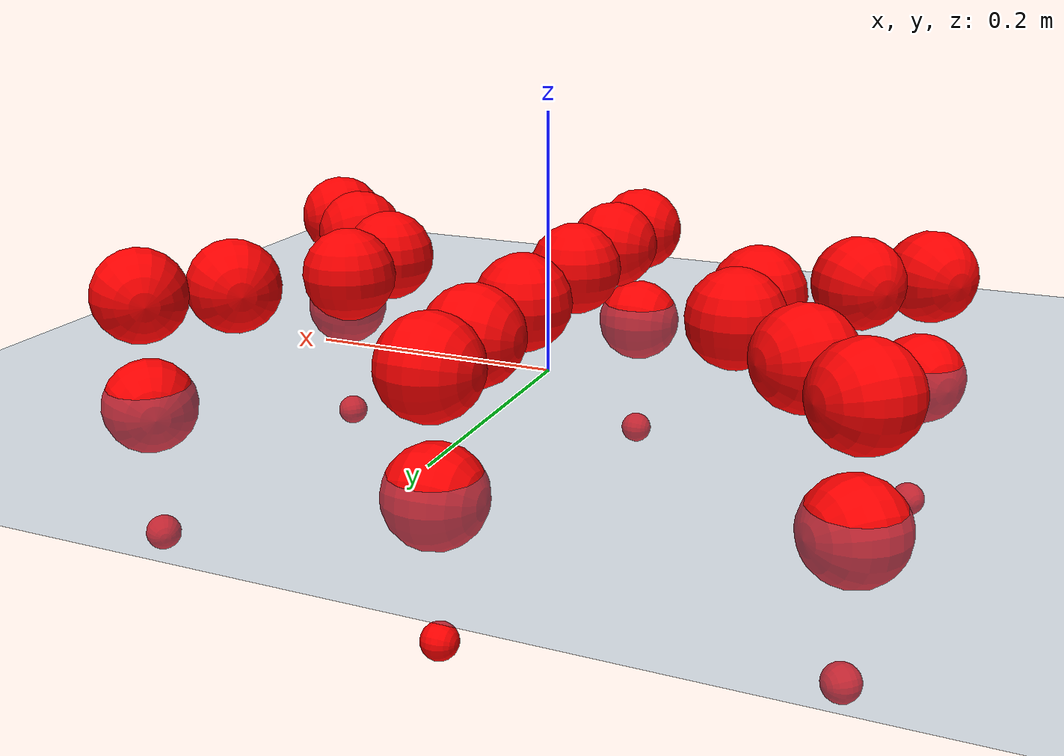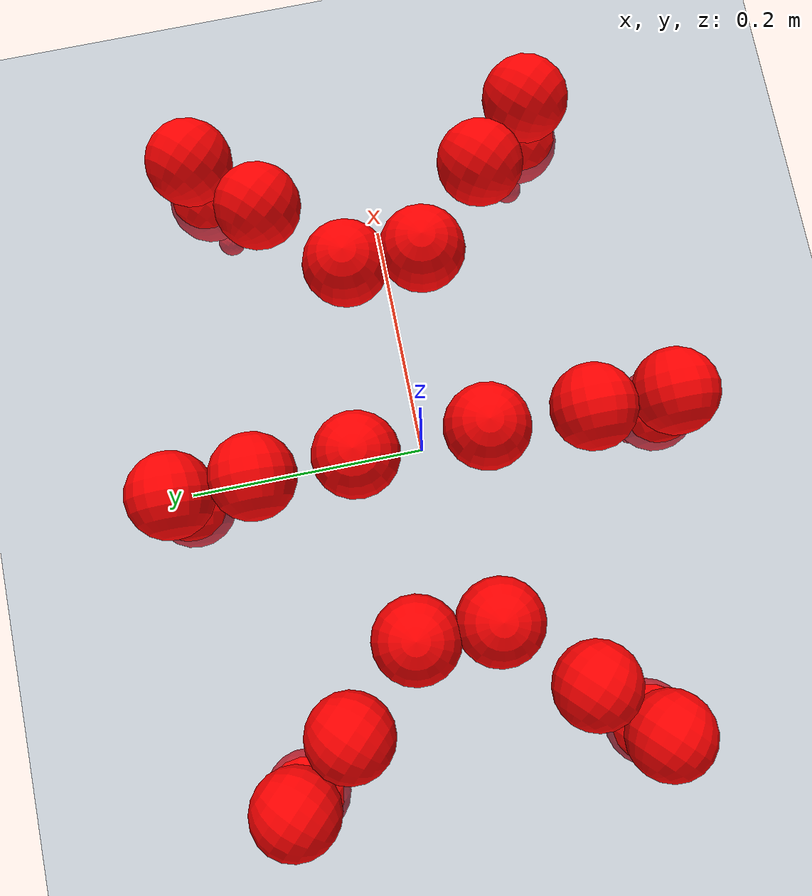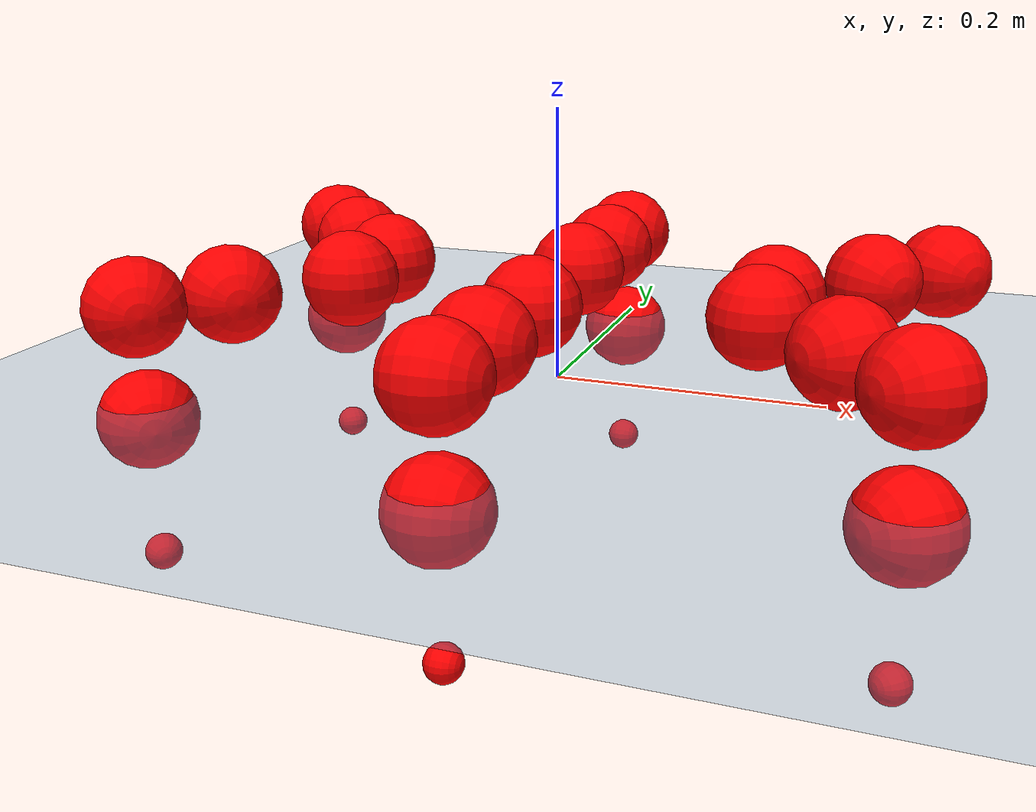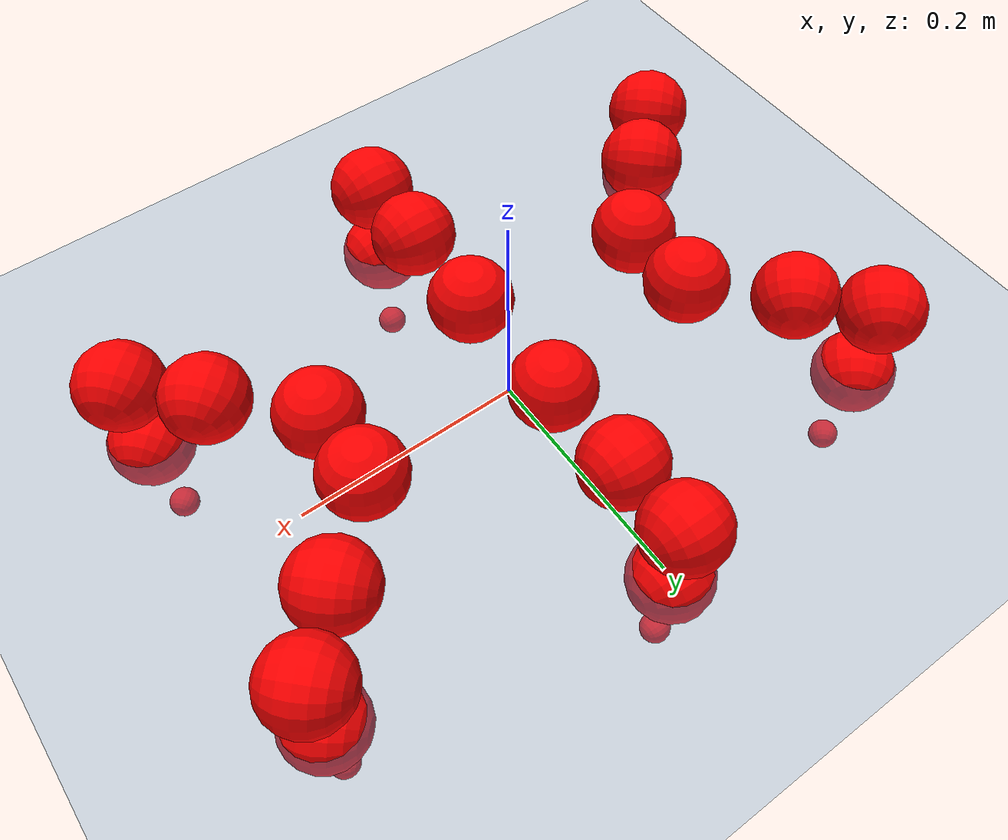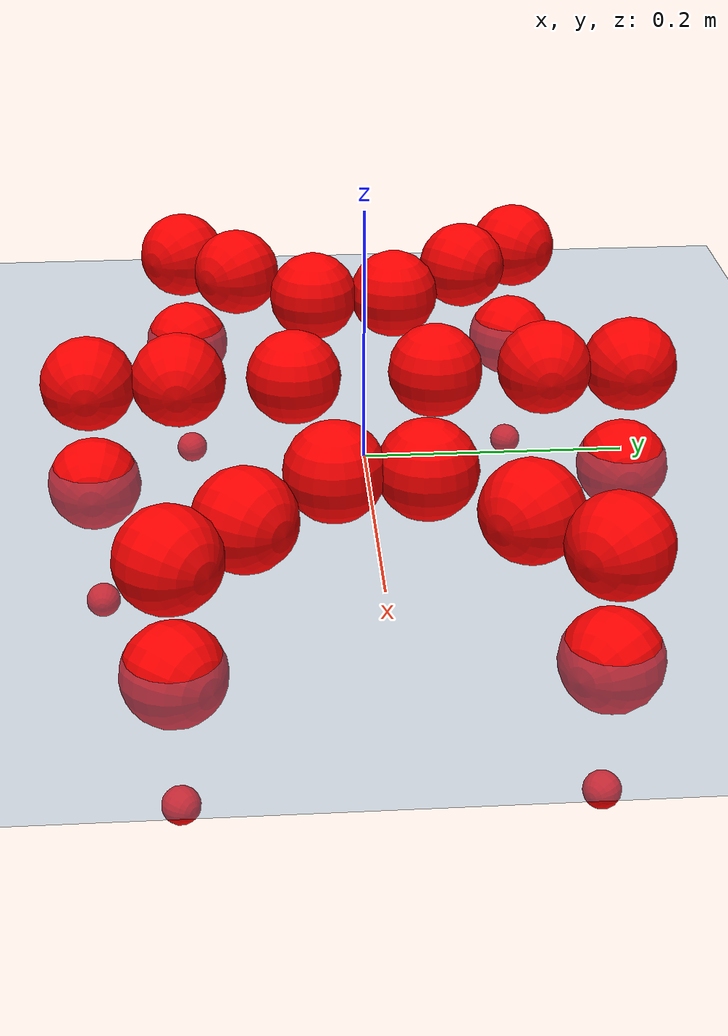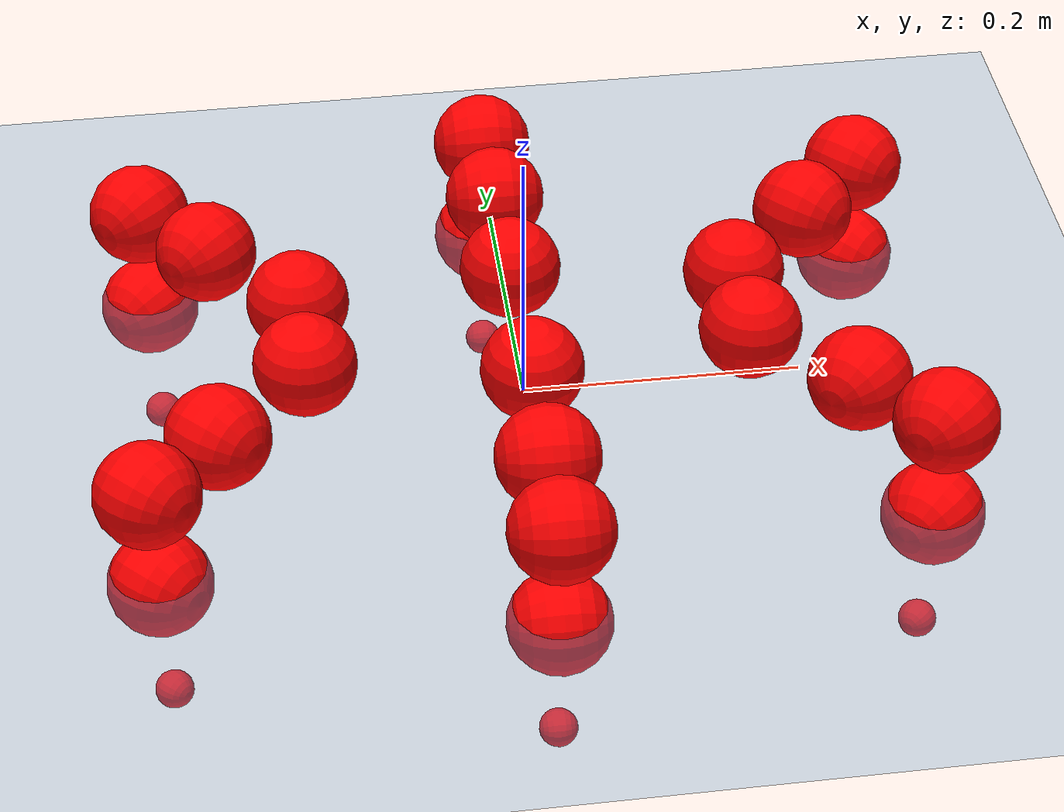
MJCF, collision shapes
<mujoco model="Golem">
  <compiler angle="radian" assetdir="assets" balanceinertia="true" inertiafromgeom="false"/>

  <option timestep="0.005" density="1.2" viscosity="2e-05"/>

  <size nkey="1"/>

  <visual>
    <quality shadowsize="8192"/>
    <map shadowclip="0.5"/>
  </visual>

  <default>
    <default class="/">
      <joint armature="0.01" damping="0.01" frictionloss="0.01"/>
      <geom contype="0" conaffinity="0" group="1" solref="-1000 -80"/>
      <site size="0.01 0.005 0.005" group="5"/>
      <general forcelimited="true" biastype="affine" gainprm="25" biasprm="0 -25 -0.5"/>
      <default class="visual">
        <geom type="mesh" group="2"/>
      </default>
      <default class="collision">
        <geom group="3"/>
      </default>
      <default class="foot">
        <geom size="0.01 0 0" condim="6" group="4" priority="1" solimp="0.015 1 0.01"/>
      </default>
      <default class="reward_collision_sphere">
        <geom group="5" rgba="1 0 0 1"/>
      </default>
    </default>
  </default>

  <asset>
    <texture type="skybox" colorspace="auto" name="//unnamed_texture_0" builtin="gradient" rgb1="0.95 0.95 0.95" rgb2="0.95 0.95 0.95" width="100" height="600"/>
    <texture type="2d" colorspace="auto" name="texplane" builtin="checker" rgb1="0.345 0.575 0.748" rgb2="0.345 0.575 0.748" markrgb="1 1 1" width="512" height="512"/>
    <material name="MatPlane" class="/" texture="texplane" texuniform="true" texrepeat="2 2" specular="0.9"/>
    <mesh name="body" class="/" file="body.stl" scale="0.001 0.001 0.001"/>
    <mesh name="coxa" class="/" file="coxa.stl" scale="0.001 0.001 0.001"/>
    <mesh name="femur" class="/" file="femur.stl" scale="0.001 0.001 0.001"/>
    <mesh name="tibia" class="/" file="tibia.stl" scale="0.001 0.001 0.001"/>
    <mesh name="tarsus" class="/" file="tarsus.stl" scale="0.001 0.001 0.001"/>
  </asset>

  <worldbody>
    <geom name="floor" class="/" size="100 100 0.125" type="plane" group="0" material="MatPlane"/>
    <light name="toplight_shadow" class="/" pos="0 0 5" dir="0.0990148 0.0990148 -0.990148" type="directional" ambient="0.04 0.04 0.04" diffuse="0.55 0.55 0.55" specular="0.12 0.12 0.12"/>
    <light name="toplight_fill" class="/" pos="0 0 5" dir="0.0990148 0.0990148 -0.990148" type="directional" castshadow="false" ambient="0.04 0.04 0.04" diffuse="0.3 0.3 0.3" specular="0.08 0.08 0.08"/>
    <body name="trunk" pos="-0.000499737 0.000506715 -0.000224295" quat="1 7.15524e-05 4.10657e-05 -6.87674e-05">
      <inertial pos="-0.000264854 -0.000590261 -0.00237918" quat="0.999989 0.00409675 0.000765605 -0.00206619" mass="2.73265" diaginertia="0.00960501 0.00105558 0.014836"/>
      <joint name="//unnamed_joint_0" type="free"/>
      <geom name="//unnamed_geom_1" class="/" pos="0 0 0.0691636" quat="1 0 0 0" type="mesh" rgba="0.9 0.9 0.9 1" mesh="body"/>
      <site name="imu" class="/" pos="0.12819 0.00240731 0.104866" size="0.00901091"/>
      <camera name="track" class="/" pos="0 -1.27034 0" quat="0.707107 0.707107 0 0" mode="trackcom"/>
      <camera name="ego_camera" class="/" pos="0.128365 0 0.108068" quat="-0.5 -0.5 0.5 0.5"/>
      <body name="coxa_RR" pos="-0.174704 -0.053382 0.0710457" quat="0.382674 -5.30311e-05 1.79391e-05 -0.923883">
        <inertial pos="0.000305907 0.000956864 0.00166386" quat="0.999999 0.000446214 0.000415405 -0.00088063" mass="0.147605" diaginertia="0.00948867 0.00105776 0.0147783"/>
        <joint name="coxa_joint_RR" class="/" pos="0 0 0" axis="0.00330118 0.0019619 -0.999993" range="-3.12272 3.14109" armature="0.00924959" damping="0" frictionloss="0.00901151"/>
        <geom name="//unnamed_geom_2" class="/" type="mesh" rgba="0.2 0.2 0.2 1" mesh="coxa"/>
        <geom name="//unnamed_geom_3" class="reward_collision_sphere" size="0.0360436" pos="-0.0296226 0 0"/>
        <body name="femur_RR" pos="0.0589368 0.000961937 -0.00157434" quat="0.500034 -0.499574 0.500029 0.500363">
          <inertial pos="0.00023167 5.74159e-05 0.000976849" quat="0.999999 0.000915975 -0.000444978 7.9012e-05" mass="0.145185" diaginertia="0.00945235 0.00103114 0.0145426"/>
          <joint name="femur_joint_RR" class="/" pos="0 0 0" axis="0.00255855 0.00139188 -0.999996" range="-3.13843 3.13273" armature="0.00899678" damping="0.000226015" frictionloss="0.0086538"/>
          <geom name="//unnamed_geom_4" class="/" type="mesh" rgba="0.9 0.9 0.9 1" mesh="femur"/>
          <geom name="//unnamed_geom_5" class="reward_collision_sphere" size="0.0360436"/>
          <body name="tibia_RR" pos="0.00162158 -0.0672158 -0.000264205" quat="-2.77894e-05 1 3.95995e-05 -0.000141164">
            <inertial pos="0.000211572 -0.000662511 -0.000252001" quat="0.999989 -0.000831029 -0.00455638 -0.000331851" mass="0.146257" diaginertia="0.00942885 0.00103461 0.0148555"/>
            <joint name="tibia_joint_RR" class="/" pos="0 0 0" axis="-0.00316811 -0.000363904 0.999995" range="-3.15483 3.13441" armature="0.0089884" damping="0" frictionloss="0.00925627"/>
            <geom name="//unnamed_geom_6" class="/" type="mesh" rgba="0.2 0.2 0.2 1" mesh="tibia"/>
            <geom name="//unnamed_geom_7" class="reward_collision_sphere" size="0.0360436"/>
            <body name="tarsus_RR" pos="0.083768 -0.00097346 -0.000111787" quat="1 0.000256642 -0.000362357 0.000225488">
              <inertial pos="0.0589924 0.000251222 0.000675414" quat="0.501181 0.499403 0.498755 0.500657" mass="0.145501" diaginertia="0.00933979 0.00102312 0.0146436"/>
              <joint name="tarsus_joint_RR" class="/" pos="0 0 0" axis="0.00148816 0.000100406 0.999999" range="-3.12369 3.12826" armature="0.0090393" damping="0.00882148" frictionloss="0.00887176"/>
              <geom name="//unnamed_geom_8" class="/" type="mesh" rgba="0.9 0.9 0.9 1" mesh="tarsus"/>
              <geom name="foot_1" class="foot" size="0.00853154" pos="0.110591 0 0" quat="0 -0.707107 0 0.707107"/>
              <geom name="//unnamed_geom_10" class="reward_collision_sphere" size="0.0360436"/>
              <geom name="//unnamed_geom_11" class="reward_collision_sphere" size="0.0135164" pos="0.106148 0 0"/>
              <site name="foot_1" class="foot" pos="0.110591 0 0" quat="0 -0.707107 0 0.707107" size="0.00901091"/>
            </body>
          </body>
        </body>
      </body>
      <body name="coxa_RM" pos="-0.000282194 -0.0838649 0.0693655" quat="0.706872 0.000248357 -0.000455935 -0.707341">
        <inertial pos="-0.000438013 0.000107739 0.000235571" quat="1 -5.52918e-05 -2.67838e-05 6.87613e-05" mass="0.146065" diaginertia="0.0093659 0.00103081 0.0147557"/>
        <joint name="coxa_joint_RM" class="/" pos="0 0 0" axis="-0.00188583 -0.000293487 -0.999998" range="-3.14101 3.13536" armature="0.00875582" damping="0.0068554" frictionloss="0.00879149"/>
        <geom name="//unnamed_geom_12" class="/" type="mesh" rgba="0.2 0.2 0.2 1" mesh="coxa"/>
        <geom name="//unnamed_geom_13" class="reward_collision_sphere" size="0.0360436" pos="-0.0296226 0 0"/>
        <body name="femur_RM" pos="0.0575544 -0.00103612 -0.000275079" quat="0.49973 -0.500168 0.500241 0.499861">
          <inertial pos="0.000822893 0.000704437 0.000213639" quat="0.999998 -0.00146151 -0.000632184 0.000714395" mass="0.145309" diaginertia="0.00928353 0.00102573 0.0144986"/>
          <joint name="femur_joint_RM" class="/" pos="0 0 0" axis="-0.00310908 -0.00212905 -0.999993" range="-3.13843 3.12806" armature="0.00903742" damping="0.00349598" frictionloss="0.00943058"/>
          <geom name="//unnamed_geom_14" class="/" type="mesh" rgba="0.9 0.9 0.9 1" mesh="femur"/>
          <geom name="//unnamed_geom_15" class="reward_collision_sphere" size="0.0360436"/>
          <body name="tibia_RM" pos="0.00122777 -0.0677124 -0.000297569" quat="-0.000293607 1 -0.000251575 0.000201784">
            <inertial pos="0.00102677 0.000491452 -5.67247e-05" quat="0.99999 -0.00427217 0.000586842 0.00134156" mass="0.148894" diaginertia="0.00949678 0.00104835 0.0149648"/>
            <joint name="tibia_joint_RM" class="/" pos="0 0 0" axis="0.00100169 -0.000520751 0.999999" range="-3.14571 3.12156" armature="0.00906283" damping="0.00963889" frictionloss="0.00899359"/>
            <geom name="//unnamed_geom_16" class="/" type="mesh" rgba="0.2 0.2 0.2 1" mesh="tibia"/>
            <geom name="//unnamed_geom_17" class="reward_collision_sphere" size="0.0360436"/>
            <body name="tarsus_RM" pos="0.0854096 0.00056293 0.000481099" quat="1 9.07746e-06 4.9379e-07 -1.26299e-05">
              <inertial pos="0.0594043 0.000629051 5.38172e-05" quat="0.499186 0.500947 0.500585 0.499279" mass="0.148997" diaginertia="0.00938687 0.00104255 0.0150195"/>
              <joint name="tarsus_joint_RM" class="/" pos="0 0 0" axis="3.37344e-06 -3.90971e-06 1" range="-3.13142 3.14058" armature="0.00893356" damping="0.00681791" frictionloss="0.00918818"/>
              <geom name="//unnamed_geom_18" class="/" type="mesh" rgba="0.9 0.9 0.9 1" mesh="tarsus"/>
              <geom name="foot_2" class="foot" size="0.00877275" pos="0.110591 0 0" quat="0 -0.707107 0 0.707107"/>
              <geom name="//unnamed_geom_20" class="reward_collision_sphere" size="0.0360436"/>
              <geom name="//unnamed_geom_21" class="reward_collision_sphere" size="0.0135164" pos="0.106148 0 0"/>
              <site name="foot_2" class="foot" pos="0.110591 0 0" quat="0 -0.707107 0 0.707107" size="0.00901091"/>
            </body>
          </body>
        </body>
      </body>
      <body name="coxa_RF" pos="0.176075 -0.0526737 0.0700898" quat="0.923878 0.000112809 -0.000171572 -0.382687">
        <inertial pos="-0.000104428 -0.00069966 -0.000179349" quat="0.999996 0.000700204 0.00247034 -0.00077513" mass="0.147884" diaginertia="0.00952766 0.0010411 0.0148694"/>
        <joint name="coxa_joint_RF" class="/" pos="0 0 0" axis="0.00395351 0.0015942 -0.999991" range="-3.12351 3.12052" armature="0.00904027" damping="0.000855528" frictionloss="0.00909822"/>
        <geom name="//unnamed_geom_22" class="/" type="mesh" rgba="0.2 0.2 0.2 1" mesh="coxa"/>
        <geom name="//unnamed_geom_23" class="reward_collision_sphere" size="0.0360436" pos="-0.0296226 0 0"/>
        <body name="femur_RF" pos="0.0590117 0.00117605 0.000256414" quat="0.499984 -0.500008 0.500079 0.49993">
          <inertial pos="0.000709564 0.000428725 -0.000231604" quat="1 -0.000145266 1.45047e-05 -2.63159e-05" mass="0.147235" diaginertia="0.00960452 0.00104861 0.0149558"/>
          <joint name="femur_joint_RF" class="/" pos="0 0 0" axis="-0.000440625 -0.000511151 -1" range="-3.13718 3.15588" armature="0.00891387" damping="0.00987428" frictionloss="0.00940775"/>
          <geom name="//unnamed_geom_24" class="/" type="mesh" rgba="0.9 0.9 0.9 1" mesh="femur"/>
          <geom name="//unnamed_geom_25" class="reward_collision_sphere" size="0.0360436"/>
          <body name="tibia_RF" pos="-0.00020207 -0.0682156 -0.000605693" quat="7.53739e-06 1 -9.71238e-08 -5.50187e-06">
            <inertial pos="0.00010396 0.000256307 -0.00113505" quat="1 0.000527431 -5.65087e-05 0.000448061" mass="0.14663" diaginertia="0.00937204 0.00102919 0.0147063"/>
            <joint name="tibia_joint_RF" class="/" pos="0 0 0" axis="0.00165809 0.000595898 0.999998" range="-3.13418 3.11956" armature="0.00900819" damping="0.0094789" frictionloss="0.00859233"/>
            <geom name="//unnamed_geom_26" class="/" type="mesh" rgba="0.2 0.2 0.2 1" mesh="tibia"/>
            <geom name="//unnamed_geom_27" class="reward_collision_sphere" size="0.0360436"/>
            <body name="tarsus_RF" pos="0.0864001 0.000166626 0.000483021" quat="1 0.000171074 -0.000120586 -1.72654e-06">
              <inertial pos="0.0595721 0.000494225 2.9408e-05" quat="0.499827 0.500869 0.500145 0.499157" mass="0.144419" diaginertia="0.00929127 0.00101737 0.0143902"/>
              <joint name="tarsus_joint_RF" class="/" pos="0 0 0" axis="0.00420707 -0.00105639 0.999991" stiffness="0.0237171" range="-3.1466 3.1381" armature="0.00918996" damping="0" frictionloss="0.00923671"/>
              <geom name="//unnamed_geom_28" class="/" type="mesh" rgba="0.9 0.9 0.9 1" mesh="tarsus"/>
              <geom name="foot_3" class="foot" size="0.00878222" pos="0.110591 0 0" quat="0 -0.707107 0 0.707107"/>
              <geom name="//unnamed_geom_30" class="reward_collision_sphere" size="0.0360436"/>
              <geom name="//unnamed_geom_31" class="reward_collision_sphere" size="0.0135164" pos="0.106148 0 0"/>
              <site name="foot_3" class="foot" pos="0.110591 0 0" quat="0 -0.707107 0 0.707107" size="0.00901091"/>
            </body>
          </body>
        </body>
      </body>
      <body name="coxa_LR" pos="-0.175479 0.0554253 0.0711876" quat="0.382748 8.0505e-05 2.11463e-05 0.923853">
        <inertial pos="0.000744032 -4.47083e-05 0.00203164" quat="0.999998 -0.00183842 -3.83793e-05 0.00118816" mass="0.148307" diaginertia="0.00960144 0.00104851 0.014622"/>
        <joint name="coxa_joint_LR" class="/" pos="0 0 0" axis="-6.23717e-08 -1.3158e-05 -1" range="-3.12059 3.12155" armature="0.00870177" damping="0.00792581" frictionloss="0.00889188"/>
        <geom name="//unnamed_geom_32" class="/" type="mesh" rgba="0.2 0.2 0.2 1" mesh="coxa"/>
        <geom name="//unnamed_geom_33" class="reward_collision_sphere" size="0.0360436" pos="-0.0296226 0 0"/>
        <body name="femur_LR" pos="0.0594317 -0.00177106 -0.000685381" quat="0.50012 -0.499808 0.500079 0.499993">
          <inertial pos="1.54371e-05 -0.00161351 0.00039339" quat="1 -5.78676e-05 3.1311e-05 5.9951e-05" mass="0.146185" diaginertia="0.00927328 0.00102331 0.0145198"/>
          <joint name="femur_joint_LR" class="/" pos="0 0 0" axis="-0.00161078 0.000982836 0.999998" range="-3.13297 3.14335" armature="0.00889057" damping="0" frictionloss="0.00902831"/>
          <geom name="//unnamed_geom_34" class="/" type="mesh" rgba="0.9 0.9 0.9 1" mesh="femur"/>
          <geom name="//unnamed_geom_35" class="reward_collision_sphere" size="0.0360436"/>
          <body name="tibia_LR" pos="0.00107643 -0.0690019 -0.00296067" quat="-0.000217402 1 -0.000144637 -0.000344544">
            <inertial pos="-0.0011536 0.000309994 0.000856419" quat="1 9.41836e-05 0.00023521 0.000679841" mass="0.14776" diaginertia="0.00945448 0.0010504 0.0148017"/>
            <joint name="tibia_joint_LR" class="/" pos="0 0 0" axis="0.000442172 0.00166793 -0.999999" range="-3.15794 3.14821" armature="0.00893545" damping="0.00143606" frictionloss="0.00900591"/>
            <geom name="//unnamed_geom_36" class="/" type="mesh" rgba="0.2 0.2 0.2 1" mesh="tibia"/>
            <geom name="//unnamed_geom_37" class="reward_collision_sphere" size="0.0360436"/>
            <body name="tarsus_LR" pos="0.0870633 0.000280788 -6.96961e-06" quat="1 0.000104559 0.000176736 -0.000276229">
              <inertial pos="0.060435 -0.000466626 -0.000249577" quat="0.498972 0.50059 0.498005 0.502422" mass="0.14619" diaginertia="0.00933014 0.00104858 0.0147194"/>
              <joint name="tarsus_joint_LR" class="/" pos="0 0 0" axis="-0.00357774 -0.00451624 -0.999983" range="-3.12265 3.15665" armature="0.00925184" damping="0" frictionloss="0.00941862"/>
              <geom name="//unnamed_geom_38" class="/" type="mesh" rgba="0.9 0.9 0.9 1" mesh="tarsus"/>
              <geom name="foot_4" class="foot" size="0.00941238" pos="0.110591 0 0" quat="0.707107 0 -0.707107 0"/>
              <geom name="//unnamed_geom_40" class="reward_collision_sphere" size="0.0360436"/>
              <geom name="//unnamed_geom_41" class="reward_collision_sphere" size="0.0135164" pos="0.106148 0 0"/>
              <site name="foot_4" class="foot" pos="0.110591 0 0" quat="0.707107 0 -0.707107 0" size="0.00901091"/>
            </body>
          </body>
        </body>
      </body>
      <body name="coxa_LM" pos="-0.00219846 0.0831455 0.0707482" quat="0.707069 -3.58757e-05 -9.33816e-05 0.707145">
        <inertial pos="0.000292185 0.000555321 -6.73558e-05" quat="1 0.000140695 -0.000926623 -8.6575e-05" mass="0.148651" diaginertia="0.00949113 0.00104641 0.0149079"/>
        <joint name="coxa_joint_LM" class="/" pos="0 0 0" axis="-0.00624837 0.00438844 -0.999971" range="-3.14438 3.14538" armature="0.00894813" damping="0.00933982" frictionloss="0.00861162"/>
        <geom name="//unnamed_geom_42" class="/" type="mesh" rgba="0.2 0.2 0.2 1" mesh="coxa"/>
        <geom name="//unnamed_geom_43" class="reward_collision_sphere" size="0.0360436" pos="-0.0296226 0 0"/>
        <body name="femur_LM" pos="0.0542317 0.00103375 -0.000611623" quat="0.500005 -0.500295 0.499886 0.499814">
          <inertial pos="-0.000758908 -0.000439189 7.44576e-06" quat="0.999997 0.000435374 0.00181006 -0.00126422" mass="0.144219" diaginertia="0.00928733 0.00103994 0.0146897"/>
          <joint name="femur_joint_LM" class="/" pos="0 0 0" axis="-0.00259372 -0.00136393 0.999996" range="-3.13986 3.13957" armature="0.00879479" damping="0" frictionloss="0.00932532"/>
          <geom name="//unnamed_geom_44" class="/" type="mesh" rgba="0.9 0.9 0.9 1" mesh="femur"/>
          <geom name="//unnamed_geom_45" class="reward_collision_sphere" size="0.0360436"/>
          <body name="tibia_LM" pos="0.000214653 -0.0664472 0.00196582" quat="-3.53625e-05 1 -3.44292e-05 2.25937e-06">
            <inertial pos="-0.000999042 -0.000821221 -0.000123207" quat="0.999998 0.000172476 -0.000435084 -0.0017667" mass="0.145928" diaginertia="0.00936659 0.00104124 0.0146344"/>
            <joint name="tibia_joint_LM" class="/" pos="0 0 0" axis="0.00278948 -0.00123758 -0.999995" range="-3.1413 3.13882" armature="0.00896807" damping="0.00271167" frictionloss="0.00911052"/>
            <geom name="//unnamed_geom_46" class="/" type="mesh" rgba="0.2 0.2 0.2 1" mesh="tibia"/>
            <geom name="//unnamed_geom_47" class="reward_collision_sphere" size="0.0360436"/>
            <body name="tarsus_LM" pos="0.0875989 -0.000418076 -0.0011468" quat="1 2.15782e-05 2.6713e-05 2.33655e-05">
              <inertial pos="0.059395 0.00091994 -0.00100478" quat="0.499543 0.501657 0.498821 0.499974" mass="0.146382" diaginertia="0.00951155 0.00103895 0.0147045"/>
              <joint name="tarsus_joint_LM" class="/" pos="0 0 0" axis="0.00180635 -0.00222448 -0.999996" range="-3.13596 3.13978" armature="0.00911066" damping="0.00471754" frictionloss="0.00916257"/>
              <geom name="//unnamed_geom_48" class="/" type="mesh" rgba="0.9 0.9 0.9 1" mesh="tarsus"/>
              <geom name="foot_5" class="foot" size="0.00911296" pos="0.110591 0 0" quat="0.707107 0 -0.707107 0"/>
              <geom name="//unnamed_geom_50" class="reward_collision_sphere" size="0.0360436"/>
              <geom name="//unnamed_geom_51" class="reward_collision_sphere" size="0.0135164" pos="0.106148 0 0"/>
              <site name="foot_5" class="foot" pos="0.110591 0 0" quat="0.707107 0 -0.707107 0" size="0.00901091"/>
            </body>
          </body>
        </body>
      </body>
      <body name="coxa_LF" pos="0.176217 0.05297 0.0696264" quat="0.923802 -0.000144629 0.000151116 0.38287">
        <inertial pos="0.00046587 0.000123418 0.000246375" quat="0.999997 0.000187086 -0.000617597 -0.00240736" mass="0.148476" diaginertia="0.00937565 0.00104424 0.0149444"/>
        <joint name="coxa_joint_LF" class="/" pos="0 0 0" axis="-0.00363544 -0.00194668 -0.999991" range="-3.1489 3.14074" armature="0.00911269" damping="0.00627953" frictionloss="0.00960757"/>
        <geom name="//unnamed_geom_52" class="/" type="mesh" rgba="0.2 0.2 0.2 1" mesh="coxa"/>
        <geom name="//unnamed_geom_53" class="reward_collision_sphere" size="0.0360436" pos="-0.0296226 0 0"/>
        <body name="femur_LF" pos="0.0589493 -0.000249196 -6.53409e-05" quat="0.50007 -0.499954 0.499944 0.500031">
          <inertial pos="-0.00121874 -0.000152252 0.00132291" quat="1 0.000311182 -2.55041e-05 0.000362852" mass="0.147335" diaginertia="0.00940529 0.00103388 0.0147022"/>
          <joint name="femur_joint_LF" class="/" pos="0 0 0" axis="-0.000243836 0.000926338 1" stiffness="0.000440005" range="-3.14583 3.14427" armature="0.00861403" damping="0.00207164" frictionloss="0.0091367"/>
          <geom name="//unnamed_geom_54" class="/" type="mesh" rgba="0.9 0.9 0.9 1" mesh="femur"/>
          <geom name="//unnamed_geom_55" class="reward_collision_sphere" size="0.0360436"/>
          <body name="tibia_LF" pos="-0.000152381 -0.0690568 0.000608471" quat="8.88301e-05 1 -0.000440148 0.000315329">
            <inertial pos="0.000654688 -0.00123779 -0.000531804" quat="1 0.000216849 4.58986e-05 -0.000234211" mass="0.14267" diaginertia="0.00910794 0.00101658 0.0144259"/>
            <joint name="tibia_joint_LF" class="/" pos="0 0 0" axis="-0.000113081 0.00183055 -0.999998" stiffness="0.000246727" range="-3.14004 3.14538" armature="0.00866631" damping="0" frictionloss="0.00894473"/>
            <geom name="//unnamed_geom_56" class="/" type="mesh" rgba="0.2 0.2 0.2 1" mesh="tibia"/>
            <geom name="//unnamed_geom_57" class="reward_collision_sphere" size="0.0360436"/>
            <body name="tarsus_LF" pos="0.0866591 0.00043412 0.000631764" quat="1 -0.000159618 7.86274e-05 -0.00013578">
              <inertial pos="0.0597568 -0.000623517 -0.000500681" quat="0.503166 0.498589 0.500441 0.497787" mass="0.144862" diaginertia="0.00918058 0.00102137 0.0143811"/>
              <joint name="tarsus_joint_LF" class="/" pos="0 0 0" axis="0.000172745 -0.00459356 -0.999989" range="-3.13041 3.13842" armature="0.00885003" damping="0.0153741" frictionloss="0.00853916"/>
              <geom name="//unnamed_geom_58" class="/" type="mesh" rgba="0.9 0.9 0.9 1" mesh="tarsus"/>
              <geom name="foot_6" class="foot" size="0.00881352" pos="0.110591 0 0" quat="0.707107 0 -0.707107 0"/>
              <geom name="//unnamed_geom_60" class="reward_collision_sphere" size="0.0360436"/>
              <geom name="//unnamed_geom_61" class="reward_collision_sphere" size="0.0135164" pos="0.106148 0 0"/>
              <site name="foot_6" class="foot" pos="0.110591 0 0" quat="0.707107 0 -0.707107 0" size="0.00901091"/>
            </body>
          </body>
        </body>
      </body>
    </body>
  </worldbody>

  <contact>
    <pair class="/" geom1="floor" geom2="foot_1" name="//unnamed_contact_0"/>
    <pair class="/" geom1="floor" geom2="foot_2" name="//unnamed_contact_1"/>
    <pair class="/" geom1="floor" geom2="foot_3" name="//unnamed_contact_2"/>
    <pair class="/" geom1="floor" geom2="foot_4" name="//unnamed_contact_3"/>
    <pair class="/" geom1="floor" geom2="foot_5" name="//unnamed_contact_4"/>
    <pair class="/" geom1="floor" geom2="foot_6" name="//unnamed_contact_5"/>
  </contact>

  <actuator>
    <general name="coxa_joint_RR" class="/" joint="coxa_joint_RR" forcerange="-6.68341 6.68341" gainprm="21.5133" biasprm="0 -21.5133 -0.478286"/>
    <general name="femur_joint_RR" class="/" joint="femur_joint_RR" forcerange="-6.55593 6.55593" gainprm="21.5133" biasprm="0 -21.5133 -0.478286"/>
    <general name="tibia_joint_RR" class="/" joint="tibia_joint_RR" forcerange="-6.58587 6.58587" gainprm="21.5133" biasprm="0 -21.5133 -0.478286"/>
    <general name="tarsus_joint_RR" class="/" joint="tarsus_joint_RR" forcerange="-6.63379 6.63379" gainprm="21.5133" biasprm="0 -21.5133 -0.478286"/>
    <general name="coxa_joint_RM" class="/" joint="coxa_joint_RM" forcerange="-6.62059 6.62059" gainprm="21.5133" biasprm="0 -21.5133 -0.478286"/>
    <general name="femur_joint_RM" class="/" joint="femur_joint_RM" forcerange="-6.58984 6.58984" gainprm="21.5133" biasprm="0 -21.5133 -0.478286"/>
    <general name="tibia_joint_RM" class="/" joint="tibia_joint_RM" forcerange="-6.62466 6.62466" gainprm="21.5133" biasprm="0 -21.5133 -0.478286"/>
    <general name="tarsus_joint_RM" class="/" joint="tarsus_joint_RM" forcerange="-6.79737 6.79737" gainprm="21.5133" biasprm="0 -21.5133 -0.478286"/>
    <general name="coxa_joint_RF" class="/" joint="coxa_joint_RF" forcerange="-6.34856 6.34856" gainprm="21.5133" biasprm="0 -21.5133 -0.478286"/>
    <general name="femur_joint_RF" class="/" joint="femur_joint_RF" forcerange="-6.41722 6.41722" gainprm="21.5133" biasprm="0 -21.5133 -0.478286"/>
    <general name="tibia_joint_RF" class="/" joint="tibia_joint_RF" forcerange="-6.37779 6.37779" gainprm="21.5133" biasprm="0 -21.5133 -0.478286"/>
    <general name="tarsus_joint_RF" class="/" joint="tarsus_joint_RF" forcerange="-6.7492 6.7492" gainprm="21.5133" biasprm="0 -21.5133 -0.478286"/>
    <general name="coxa_joint_LR" class="/" joint="coxa_joint_LR" forcerange="-6.80317 6.80317" gainprm="21.5133" biasprm="0 -21.5133 -0.478286"/>
    <general name="femur_joint_LR" class="/" joint="femur_joint_LR" forcerange="-6.50714 6.50714" gainprm="21.5133" biasprm="0 -21.5133 -0.478286"/>
    <general name="tibia_joint_LR" class="/" joint="tibia_joint_LR" forcerange="-6.56357 6.56357" gainprm="21.5133" biasprm="0 -21.5133 -0.478286"/>
    <general name="tarsus_joint_LR" class="/" joint="tarsus_joint_LR" forcerange="-6.80221 6.80221" gainprm="21.5133" biasprm="0 -21.5133 -0.478286"/>
    <general name="coxa_joint_LM" class="/" joint="coxa_joint_LM" forcerange="-6.45317 6.45317" gainprm="21.5133" biasprm="0 -21.5133 -0.478286"/>
    <general name="femur_joint_LM" class="/" joint="femur_joint_LM" forcerange="-6.7825 6.7825" gainprm="21.5133" biasprm="0 -21.5133 -0.478286"/>
    <general name="tibia_joint_LM" class="/" joint="tibia_joint_LM" forcerange="-6.71636 6.71636" gainprm="21.5133" biasprm="0 -21.5133 -0.478286"/>
    <general name="tarsus_joint_LM" class="/" joint="tarsus_joint_LM" forcerange="-6.46604 6.46604" gainprm="21.5133" biasprm="0 -21.5133 -0.478286"/>
    <general name="coxa_joint_LF" class="/" joint="coxa_joint_LF" forcerange="-6.54105 6.54105" gainprm="21.5133" biasprm="0 -21.5133 -0.478286"/>
    <general name="femur_joint_LF" class="/" joint="femur_joint_LF" forcerange="-6.80128 6.80128" gainprm="21.5133" biasprm="0 -21.5133 -0.478286"/>
    <general name="tibia_joint_LF" class="/" joint="tibia_joint_LF" forcerange="-6.35409 6.35409" gainprm="21.5133" biasprm="0 -21.5133 -0.478286"/>
    <general name="tarsus_joint_LF" class="/" joint="tarsus_joint_LF" forcerange="-6.68153 6.68153" gainprm="21.5133" biasprm="0 -21.5133 -0.478286"/>
  </actuator>

  <sensor>
    <gyro site="imu" name="imu_angular_velocity"/>
    <velocimeter site="imu" name="imu_linear_velocity"/>
    <framelinvel objtype="site" objname="foot_1" name="foot_1_global_linear_velocity"/>
    <framelinvel objtype="site" objname="foot_2" name="foot_2_global_linear_velocity"/>
    <framelinvel objtype="site" objname="foot_3" name="foot_3_global_linear_velocity"/>
    <framelinvel objtype="site" objname="foot_4" name="foot_4_global_linear_velocity"/>
    <framelinvel objtype="site" objname="foot_5" name="foot_5_global_linear_velocity"/>
    <framelinvel objtype="site" objname="foot_6" name="foot_6_global_linear_velocity"/>
  </sensor>

  <keyframe>
    <key name="home" qpos="0 0 0.1457 1 0 0 0 0 0 0 0 0 0 0 0 0 0 0 0 0 0 0 0 0 0 0 0 0 0 0 0"/>
  </keyframe>
</mujoco>
